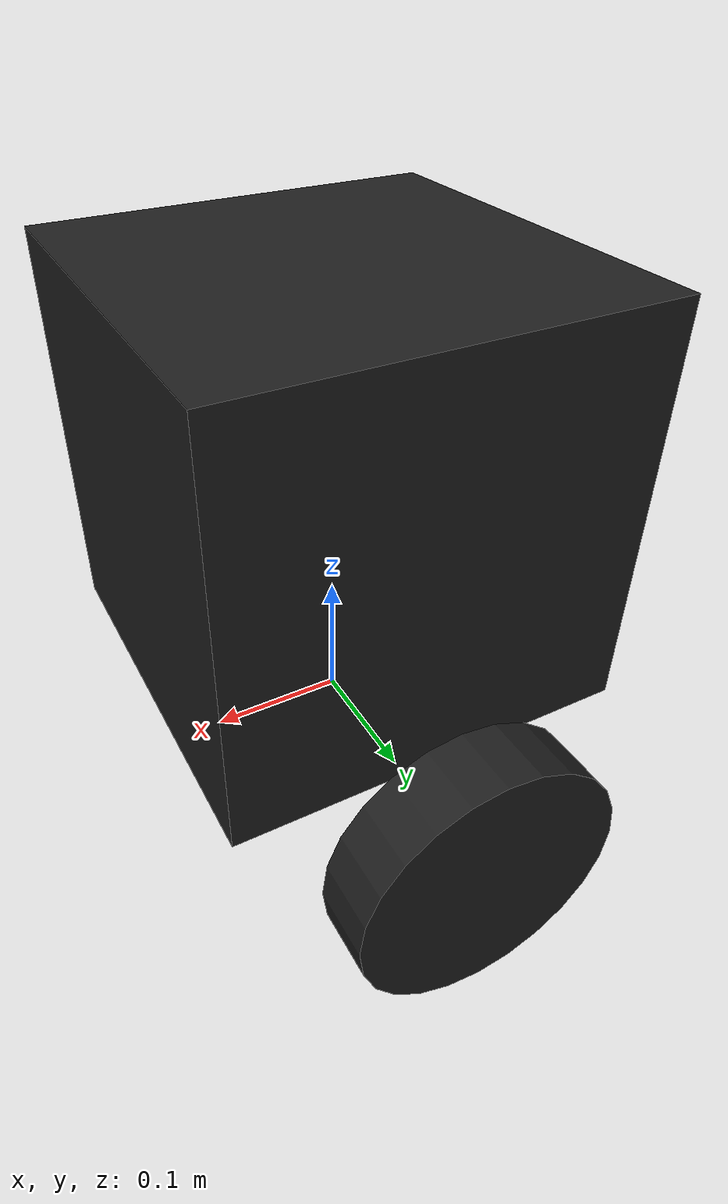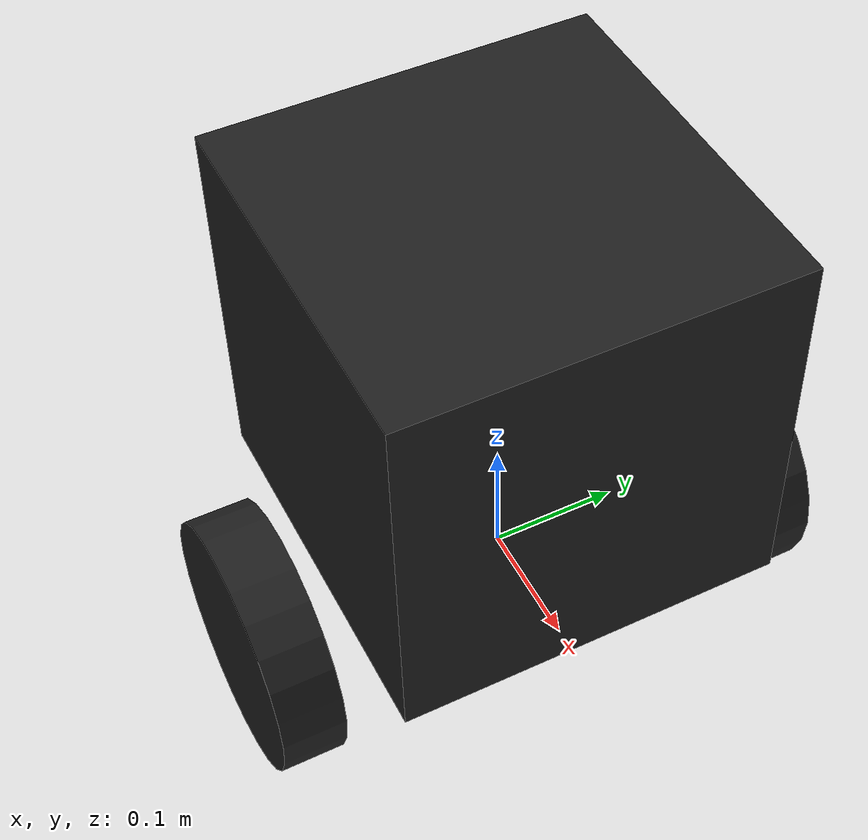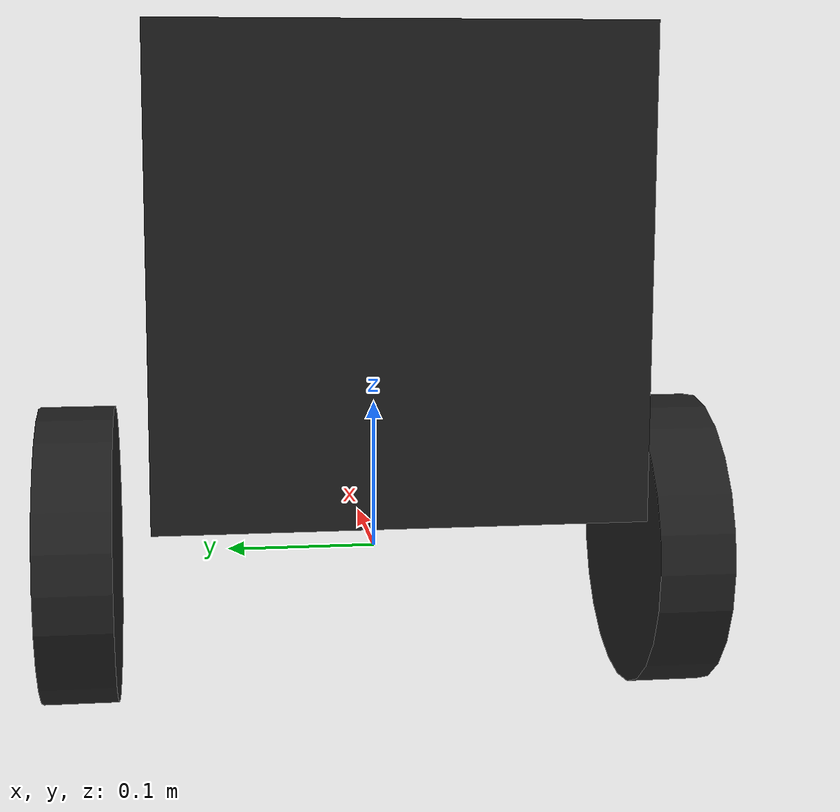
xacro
<?xml version='1.0'?>

<robot name="gecko_robot" xmlns:xacro="http://www.ros.org/wiki/xacro">

  <xacro:include filename="/home/cristianooo/jazzy_ros2_robostack/src/gecko_robot/model/diff_drive_robot.gazebo" />
  <xacro:include filename="/home/cristianooo/jazzy_ros2_robostack/src/gecko_robot/model/materials.xacro" />
  <xacro:include filename="/home/cristianooo/jazzy_ros2_robostack/src/gecko_robot/model/xacro_variables.xacro" />

<!--Links Declaration-->

<link name="base_footprint">
    <inertial>
        <mass value="0.0001"/>
        <origin xyz="0 0 0"/>
        <inertia ixx="0.0001" ixy="0.0" ixz="0.0"
                iyy="0.0001" iyz="0.0"
                izz="0.0001"/>
    </inertial>
</link>

<joint name="body_link_joint" type="fixed">
    <parent link="base_footprint"/>
    <child link="base_link"/>
</joint>

<link name="base_link">
    <visual>
        <geometry>
            <box size = "0.3 0.3 0.3"/>
        </geometry>
        <origin rpy="0 0 0" xyz="0 0 0.2"/>
        <material name="black"/>
    </visual>
    <collision>
        <geometry>
            <box size="0.3 0.3 0.3"/>
        </geometry>
        <origin rpy="0 0 0" xyz="0 0 0"/>
    </collision>

    <inertial>
        <mass value="5.0"/>
        <origin xyz="0 0 0"/>
        <inertia ixx="0.0395" ixy="0.0" ixz="0.0"
                iyy="0.0395" iyz="0.0"
                izz="0.0395"/>
    </inertial>
</link>

<link name="left_wheel">
    <visual>
        <origin xyz="${wheel_x} ${wheel_y} ${wheel_z}" rpy="${wheel_r} ${wheel_p} ${wheel_ya}"/>
        <geometry>
            <cylinder radius="${wheel_cylinder_radius}" length="${wheel_cylinder_height}"/>
        </geometry>
        <material name="black"/>
    </visual>
    <collision>
        <origin xyz="0 0 0" rpy="${wheel_r} ${wheel_p} ${wheel_ya}"/>
        <geometry>
            <cylinder radius="${wheel_cylinder_radius}" length="${wheel_cylinder_height}"/>
        </geometry>
    </collision>

    <inertial>
        <mass value="1.0"/>
        <origin xyz="0 0 0"/>
        <inertia ixx="0.01" ixy="0.0" ixz="0.0"
                iyy="0.01" iyz="0.0"
                izz="0.01"/>
    </inertial>
</link>

<link name="right_wheel">
    <visual >
        <origin xyz="${wheel_x} ${wheel_y} ${wheel_z}" rpy="${wheel_r} ${wheel_p} ${wheel_ya}"/>
        <geometry>
            <cylinder radius="${wheel_cylinder_radius}" length="${wheel_cylinder_height}"/>
        </geometry>
        <material name="black"/>
    </visual>

    <collision>
        <origin xyz="0 0 0" rpy="${wheel_r} ${wheel_p} ${wheel_ya}"/>
        <geometry>
            <cylinder radius="${wheel_cylinder_radius}" length="${wheel_cylinder_height}"/>
        </geometry>
    </collision>

    <inertial>
        <mass value="1.0"/>
        <origin xyz="0 0 0"/>
        <inertia ixx="0.01" ixy="0.0" ixz="0.0"
                iyy="0.01" iyz="0.0"
                izz="0.01"/>
    </inertial>
</link>

<!--Joint Declaration-->

  <joint type="continuous" name="left_wheel_hinge">
    <origin xyz="${left_wheel_x} ${left_wheel_y} ${left_wheel_z}" rpy="0 0 0"/>
    <child link="left_wheel"/>
    <parent link="base_link"/>
    <axis xyz="0 1 0" rpy="0 0 0"/>
    <limit effort="100" velocity="100"/>
    <joint_properties damping="0.0" friction="0.0"/>
  </joint>

  <joint type="continuous" name="right_wheel_hinge">
    <origin xyz="${right_wheel_x} ${right_wheel_y} ${right_wheel_z}" rpy="0 0 0"/>
    <child link="right_wheel"/>
    <parent link="base_link"/>
    <axis xyz="0 1 0" rpy="0 0 0"/>
    <limit effort="100" velocity="100"/>
    <joint_properties damping="0.0" friction="0.0"/>
  </joint>

</robot>

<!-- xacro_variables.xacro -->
<robot name="robot" xmlns:xacro="http://www.ros.org/wiki/xacro">

<!--Xacro variable declaration-->

<!--Dimentions-->

  <!--Chasis_cylinder-->
  <xacro:property name="chasis_cylinder_radius" value="0.2" />
  <xacro:property name="chasis_cylinder_height" value="0.05" />

  <!--Chasis_caster-->
  <xacro:property name="chasis_caster_radius" value="0.05" />

  <!--Wheel_cylinder-->
  <xacro:property name="wheel_cylinder_radius" value="0.1" />
  <xacro:property name="wheel_cylinder_height" value="0.05" />

<!--Positions-->
  <!--Chasis_cylinder-->
  <xacro:property name="chasis_cylinder_x" value="0" />
  <xacro:property name="chasis_cylinder_y" value="0" />
  <xacro:property name="chasis_cylinder_z" value="0.1" />

  <xacro:property name="chasis_cylinder_r" value="0" />
  <xacro:property name="chasis_cylinder_p" value="0" />
  <xacro:property name="chasis_cylinder_ya" value="0" />

  <!--Chasis_caster-->
  <xacro:property name="chasis_caster_x" value="-0.15" />
  <xacro:property name="chasis_caster_y" value="0" />
  <xacro:property name="chasis_caster_z" value="-0.05" />

  <xacro:property name="chasis_caster_r" value="0" />
  <xacro:property name="chasis_caster_p" value="0" />
  <xacro:property name="chasis_caster_ya" value="0" />

  <xacro:property name="chasis_caster2_x" value="0.15" />
  <xacro:property name="chasis_caster2_y" value="0" />
  <xacro:property name="chasis_caster2_z" value="-0.05" />

  <xacro:property name="chasis_caster2_r" value="0" />
  <xacro:property name="chasis_caster2_p" value="0" />
  <xacro:property name="chasis_caster2_ya" value="0" />

  <!--Wheel-->
  <xacro:property name="wheel_x" value="0" />
  <xacro:property name="wheel_y" value="0" />
  <xacro:property name="wheel_z" value="0" />

  <xacro:property name="wheel_r" value="0" />
  <xacro:property name="wheel_p" value="1.5707" />
  <xacro:property name="wheel_ya" value="1.5707" />

<!--Joint variables-->

  <xacro:property name="right_wheel_x" value="0.0" />
  <xacro:property name="right_wheel_y" value="0.20" />
  <xacro:property name="right_wheel_z" value="0" />

  <xacro:property name="left_wheel_x" value="0" />
  <xacro:property name="left_wheel_y" value="-0.20" />
  <xacro:property name="left_wheel_z" value="0" />

</robot>
